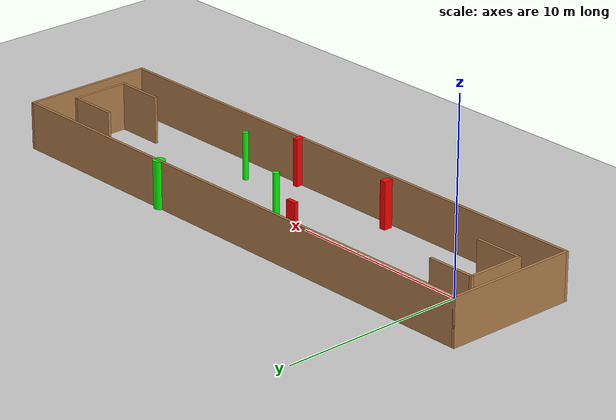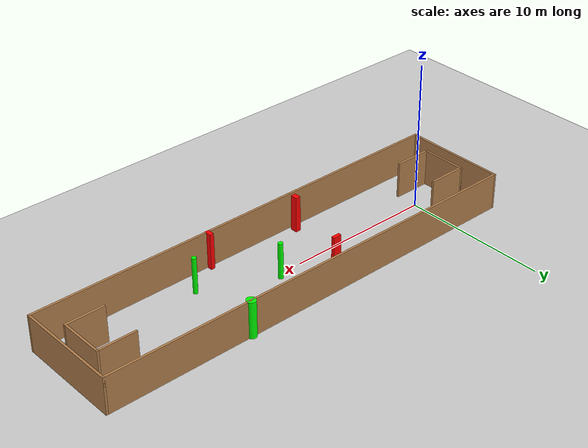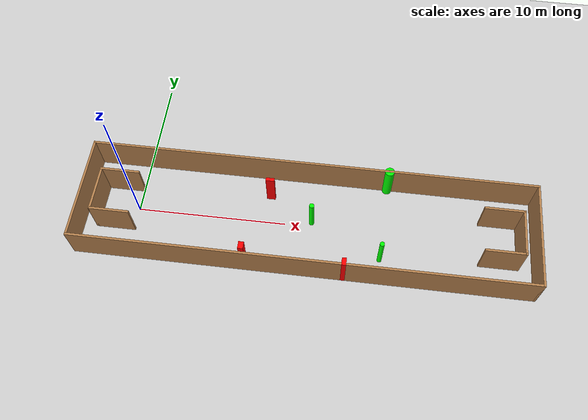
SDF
<sdf version="1.7">
 <world name="default">
  <light name="sun" type="directional">
   <pose>0 0 10 0 -0 0</pose>
   <diffuse>0.8 0.8 0.8 1</diffuse>
   <specular>0.2 0.2 0.2 1</specular>
   <attenuation>
    <range>1000</range>
    <constant>0.9</constant>
    <linear>0.01</linear>
    <quadratic>0.001</quadratic>
   </attenuation>
   <direction>-0.5 0.1 -0.9</direction>
   <spot><inner_angle>0</inner_angle><outer_angle>0</outer_angle><falloff>0</falloff></spot>
  </light>
  <model name="ground_plane">
   <static>1</static>
   <link name="link">
    <collision name="collision">
     <geometry><plane><normal>0 0 1</normal><size>100 100</size></plane></geometry>
     <surface>
      <contact><collide_bitmask>65535</collide_bitmask></contact>
      <friction><ode><mu>100</mu><mu2>50</mu2></ode></friction>
     </surface>
    </collision>
    <visual name="visual">
     <cast_shadows>0</cast_shadows>
     <geometry><plane><normal>0 0 1</normal><size>100 100</size></plane></geometry>
     <material>
      <script><uri>file://media/materials/scripts/gazebo.material</uri><name>Gazebo/Grey</name></script>
     </material>
    </visual>
   </link>
  </model>
  <gravity>0 0 -9.8</gravity>
  <magnetic_field>6e-06 2.3e-05 -4.2e-05</magnetic_field>
  <atmosphere type="adiabatic"/>
  <physics type="ode">
   <max_step_size>0.001</max_step_size>
   <real_time_factor>1</real_time_factor>
   <real_time_update_rate>1000</real_time_update_rate>
  </physics>
  <scene><ambient>0.4 0.4 0.4 1</ambient><background>0.7 0.7 0.7 1</background><shadows>1</shadows></scene>
  <spherical_coordinates>
   <surface_model>EARTH_WGS84</surface_model>
   <latitude_deg>0</latitude_deg>
   <longitude_deg>0</longitude_deg>
   <elevation>0</elevation>
   <heading_deg>0</heading_deg>
  </spherical_coordinates>
  <model name="my_base_walls">
   <link name="Wall_0">
    <collision name="Wall_0_Collision">
     <geometry><box><size>7.15 0.15 2.5</size></box></geometry>
     <pose>0 0 1.25 0 -0 0</pose>
    </collision>
    <visual name="Wall_0_Visual">
     <pose>0 0 1.25 0 -0 0</pose>
     <geometry><box><size>7.15 0.15 2.5</size></box></geometry>
     <material>
      <script><uri>file://media/materials/scripts/gazebo.material</uri><name>Gazebo/Wood</name></script>
      <ambient>1 1 1 1</ambient>
     </material>
     <meta><layer>0</layer></meta>
    </visual>
    <pose>-15 0 0 0 -0 1.5708</pose>
   </link>
   <link name="Wall_10">
    <collision name="Wall_10_Collision">
     <geometry><box><size>2.65 0.15 2.5</size></box></geometry>
     <pose>0 0 1.25 0 -0 0</pose>
    </collision>
    <visual name="Wall_10_Visual">
     <pose>0 0 1.25 0 -0 0</pose>
     <geometry><box><size>2.65 0.15 2.5</size></box></geometry>
     <material>
      <script><uri>file://media/materials/scripts/gazebo.material</uri><name>Gazebo/Wood</name></script>
      <ambient>1 1 1 1</ambient>
     </material>
     <meta><layer>0</layer></meta>
    </visual>
    <pose>-12.75 -1.5 0 0 -0 0</pose>
   </link>
   <link name="Wall_12">
    <collision name="Wall_12_Collision">
     <geometry><box><size>2.65 0.15 2.5</size></box></geometry>
     <pose>0 0 1.25 0 -0 0</pose>
    </collision>
    <visual name="Wall_12_Visual">
     <pose>0 0 1.25 0 -0 0</pose>
     <geometry><box><size>2.65 0.15 2.5</size></box></geometry>
     <material>
      <script><uri>file://media/materials/scripts/gazebo.material</uri><name>Gazebo/Wood</name></script>
      <ambient>1 1 1 1</ambient>
     </material>
     <meta><layer>0</layer></meta>
    </visual>
    <pose>-12.75 1.5 0 0 -0 0</pose>
   </link>
   <link name="Wall_14">
    <collision name="Wall_14_Collision">
     <geometry><box><size>3.15 0.15 2.5</size></box></geometry>
     <pose>0 0 1.25 0 -0 0</pose>
    </collision>
    <visual name="Wall_14_Visual">
     <pose>0 0 1.25 0 -0 0</pose>
     <geometry><box><size>3.15 0.15 2.5</size></box></geometry>
     <material>
      <script><uri>file://media/materials/scripts/gazebo.material</uri><name>Gazebo/Wood</name></script>
      <ambient>1 1 1 1</ambient>
     </material>
     <meta><layer>0</layer></meta>
    </visual>
    <pose>14 0 0 0 -0 -1.5708</pose>
   </link>
   <link name="Wall_15">
    <collision name="Wall_15_Collision">
     <geometry><box><size>2.65 0.15 2.5</size></box></geometry>
     <pose>0 0 1.25 0 -0 0</pose>
    </collision>
    <visual name="Wall_15_Visual">
     <pose>0 0 1.25 0 -0 0</pose>
     <geometry><box><size>2.65 0.15 2.5</size></box></geometry>
     <material>
      <script><uri>file://media/materials/scripts/gazebo.material</uri><name>Gazebo/Wood</name></script>
      <ambient>1 1 1 1</ambient>
     </material>
     <meta><layer>0</layer></meta>
    </visual>
    <pose>12.75 -1.5 0 0 -0 3.14159</pose>
   </link>
   <link name="Wall_17">
    <collision name="Wall_17_Collision">
     <geometry><box><size>2.65 0.15 2.5</size></box></geometry>
     <pose>0 0 1.25 0 -0 0</pose>
    </collision>
    <visual name="Wall_17_Visual">
     <pose>0 0 1.25 0 -0 0</pose>
     <geometry><box><size>2.65 0.15 2.5</size></box></geometry>
     <material>
      <script><uri>file://media/materials/scripts/gazebo.material</uri><name>Gazebo/Wood</name></script>
      <ambient>1 1 1 1</ambient>
     </material>
     <meta><layer>0</layer></meta>
    </visual>
    <pose>12.75 1.5 0 0 -0 3.14159</pose>
   </link>
   <link name="Wall_2">
    <collision name="Wall_2_Collision">
     <geometry><box><size>30.15 0.15 2.5</size></box></geometry>
     <pose>0 0 1.25 0 -0 0</pose>
    </collision>
    <visual name="Wall_2_Visual">
     <pose>0 0 1.25 0 -0 0</pose>
     <geometry><box><size>30.15 0.15 2.5</size></box></geometry>
     <material>
      <script><uri>file://media/materials/scripts/gazebo.material</uri><name>Gazebo/Wood</name></script>
      <ambient>1 1 1 1</ambient>
     </material>
     <meta><layer>0</layer></meta>
    </visual>
    <pose>-0 -3.5 0 0 -0 0</pose>
   </link>
   <link name="Wall_4">
    <collision name="Wall_4_Collision">
     <geometry><box><size>30.15 0.15 2.5</size></box></geometry>
     <pose>0 0 1.25 0 -0 0</pose>
    </collision>
    <visual name="Wall_4_Visual">
     <pose>0 0 1.25 0 -0 0</pose>
     <geometry><box><size>30.15 0.15 2.5</size></box></geometry>
     <material>
      <script><uri>file://media/materials/scripts/gazebo.material</uri><name>Gazebo/Wood</name></script>
      <ambient>1 1 1 1</ambient>
     </material>
     <meta><layer>0</layer></meta>
    </visual>
    <pose>-0 3.5 0 0 -0 0</pose>
   </link>
   <link name="Wall_6">
    <collision name="Wall_6_Collision">
     <geometry><box><size>7.15 0.15 2.5</size></box></geometry>
     <pose>0 0 1.25 0 -0 0</pose>
    </collision>
    <visual name="Wall_6_Visual">
     <pose>0 0 1.25 0 -0 0</pose>
     <geometry><box><size>7.15 0.15 2.5</size></box></geometry>
     <material>
      <script><uri>file://media/materials/scripts/gazebo.material</uri><name>Gazebo/Wood</name></script>
      <ambient>1 1 1 1</ambient>
     </material>
     <meta><layer>0</layer></meta>
    </visual>
    <pose>15 0 0 0 -0 -1.5708</pose>
   </link>
   <link name="Wall_9">
    <collision name="Wall_9_Collision">
     <geometry><box><size>3.15 0.15 2.5</size></box></geometry>
     <pose>0 0 1.25 0 -0 0</pose>
    </collision>
    <visual name="Wall_9_Visual">
     <pose>0 0 1.25 0 -0 0</pose>
     <geometry><box><size>3.15 0.15 2.5</size></box></geometry>
     <material>
      <script><uri>file://media/materials/scripts/gazebo.material</uri><name>Gazebo/Wood</name></script>
      <ambient>1 1 1 1</ambient>
     </material>
     <meta><layer>0</layer></meta>
    </visual>
    <pose>-14 0 0 0 -0 -1.5708</pose>
   </link>
   <static>1</static>
   <pose>11.5 0 0 0 -0 0</pose>
  </model>
  <model name="cylinder1">
   <static>1</static>
   <link name="link">
    <inertial>
     <mass>1</mass>
     <inertia><ixx>0.5</ixx><ixy>0</ixy><ixz>0</ixz><iyy>0.5</iyy><iyz>0</iyz><izz>1</izz></inertia>
    </inertial>
    <collision name="collision">
     <geometry><cylinder><radius>0.31344317371305086</radius><length>2.5</length></cylinder></geometry>
    </collision>
    <visual name="visual">
     <geometry><cylinder><radius>0.31344317371305086</radius><length>2.5</length></cylinder></geometry>
     <material>
      <ambient>0 1 0 1</ambient>
      <diffuse>0 1 0 1</diffuse>
      <specular>0.1 0.1 0.1 1</specular>
      <emissive>0 0 0 0</emissive>
     </material>
    </visual>
   </link>
   <pose>16.67149634554682 3.468248768028049 1.25 0 0 0</pose>
  </model>
  <model name="cylinder2">
   <static>1</static>
   <link name="link">
    <inertial>
     <mass>1</mass>
     <inertia><ixx>0.5</ixx><ixy>0</ixy><ixz>0</ixz><iyy>0.5</iyy><iyz>0</iyz><izz>1</izz></inertia>
    </inertial>
    <collision name="collision">
     <geometry><cylinder><radius>0.16517779752514214</radius><length>2.5</length></cylinder></geometry>
    </collision>
    <visual name="visual">
     <geometry><cylinder><radius>0.16517779752514214</radius><length>2.5</length></cylinder></geometry>
     <material>
      <ambient>0 1 0 1</ambient>
      <diffuse>0 1 0 1</diffuse>
      <specular>0.1 0.1 0.1 1</specular>
      <emissive>0 0 0 0</emissive>
     </material>
    </visual>
   </link>
   <pose>11.787608163938836 0.3139647076326373 1.25 0 0 0</pose>
  </model>
  <model name="cylinder3">
   <static>1</static>
   <link name="link">
    <inertial>
     <mass>1</mass>
     <inertia><ixx>0.5</ixx><ixy>0</ixy><ixz>0</ixz><iyy>0.5</iyy><iyz>0</iyz><izz>1</izz></inertia>
    </inertial>
    <collision name="collision">
     <geometry><cylinder><radius>0.152373560595248</radius><length>2.5</length></cylinder></geometry>
    </collision>
    <visual name="visual">
     <geometry><cylinder><radius>0.152373560595248</radius><length>2.5</length></cylinder></geometry>
     <material>
      <ambient>0 1 0 1</ambient>
      <diffuse>0 1 0 1</diffuse>
      <specular>0.1 0.1 0.1 1</specular>
      <emissive>0 0 0 0</emissive>
     </material>
    </visual>
   </link>
   <pose>16.499898945587 -1.8784037102518372 1.25 0 0 0</pose>
  </model>
  <model name="box1">
   <static>1</static>
   <link name="link">
    <inertial>
     <mass>1</mass>
     <inertia><ixx>0.083</ixx><ixy>0</ixy><ixz>0</ixz><iyy>0.083</iyy><iyz>0</iyz><izz>0.083</izz></inertia>
    </inertial>
    <collision name="collision">
     <geometry><box><size>0.29121409196943004 0.49590608903747035 2.5</size></box></geometry>
    </collision>
    <visual name="visual">
     <geometry><box><size>0.29121409196943004 0.49590608903747035 2.5</size></box></geometry>
     <material>
      <ambient>1 0 0 1</ambient>
      <diffuse>1 0 0 1</diffuse>
      <specular>0.1 0.1 0.1 1</specular>
      <emissive>0 0 0 0</emissive>
     </material>
    </visual>
    <sensor name="my_contact" type="contact">
     <contact><collision>box_collision</collision><topic>__default_topic__</topic></contact>
    </sensor>
   </link>
   <pose>14.216584937024889 -3.334300271680573 1.25 0 0 0</pose>
  </model>
  <model name="box2">
   <static>1</static>
   <link name="link">
    <inertial>
     <mass>1</mass>
     <inertia><ixx>0.083</ixx><ixy>0</ixy><ixz>0</ixz><iyy>0.083</iyy><iyz>0</iyz><izz>0.083</izz></inertia>
    </inertial>
    <collision name="collision">
     <geometry><box><size>0.5773232794260236 0.22262574189253914 2.5</size></box></geometry>
    </collision>
    <visual name="visual">
     <geometry><box><size>0.5773232794260236 0.22262574189253914 2.5</size></box></geometry>
     <material>
      <ambient>1 0 0 1</ambient>
      <diffuse>1 0 0 1</diffuse>
      <specular>0.1 0.1 0.1 1</specular>
      <emissive>0 0 0 0</emissive>
     </material>
    </visual>
    <sensor name="my_contact" type="contact">
     <contact><collision>box_collision</collision><topic>__default_topic__</topic></contact>
    </sensor>
   </link>
   <pose>8.823304033833042 1.9494222198445392 1.25 0 0 0</pose>
  </model>
  <model name="box3">
   <static>1</static>
   <link name="link">
    <inertial>
     <mass>1</mass>
     <inertia><ixx>0.083</ixx><ixy>0</ixy><ixz>0</ixz><iyy>0.083</iyy><iyz>0</iyz><izz>0.083</izz></inertia>
    </inertial>
    <collision name="collision">
     <geometry><box><size>0.34636968911598076 0.47824624414143596 2.5</size></box></geometry>
    </collision>
    <visual name="visual">
     <geometry><box><size>0.34636968911598076 0.47824624414143596 2.5</size></box></geometry>
     <material>
      <ambient>1 0 0 1</ambient>
      <diffuse>1 0 0 1</diffuse>
      <specular>0.1 0.1 0.1 1</specular>
      <emissive>0 0 0 0</emissive>
     </material>
    </visual>
    <sensor name="my_contact" type="contact">
     <contact><collision>box_collision</collision><topic>__default_topic__</topic></contact>
    </sensor>
   </link>
   <pose>7.664334830156459 -2.9873170930928223 1.25 0 0 0</pose>
  </model>
 </world>
</sdf>
